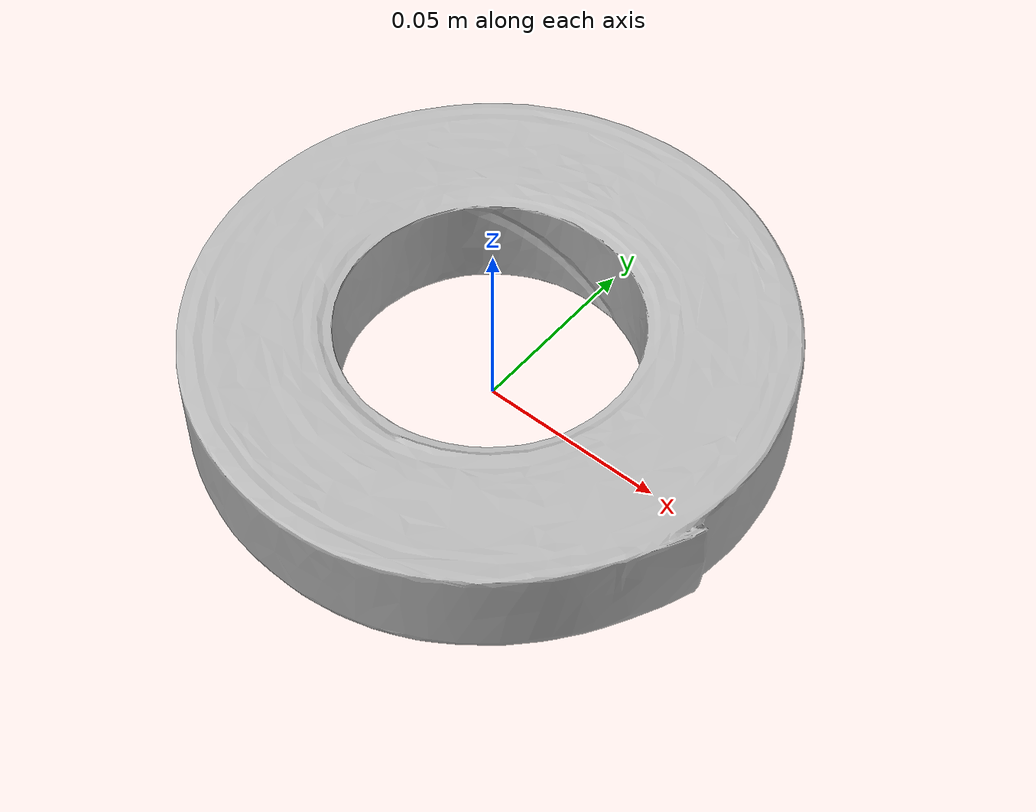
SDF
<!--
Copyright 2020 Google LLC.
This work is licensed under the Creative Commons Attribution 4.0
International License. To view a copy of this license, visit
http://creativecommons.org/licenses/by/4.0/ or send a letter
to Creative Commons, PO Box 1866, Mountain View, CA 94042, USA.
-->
<?xml version="1.0" ?>
<sdf version="1.6">
  <model name="3M_Antislip_Surfacing_Light_Duty_White">
    <link name="link_0">
      <visual name="visual">
        <geometry>
          <mesh>
            <uri>meshes/model.obj</uri>
          </mesh>
        </geometry>
      </visual>
      <collision name="collision_0">
        <geometry>
          <mesh>
            <uri>meshes/model.obj</uri>
          </mesh>
        </geometry>
      </collision>
    </link>
  </model>
</sdf>
